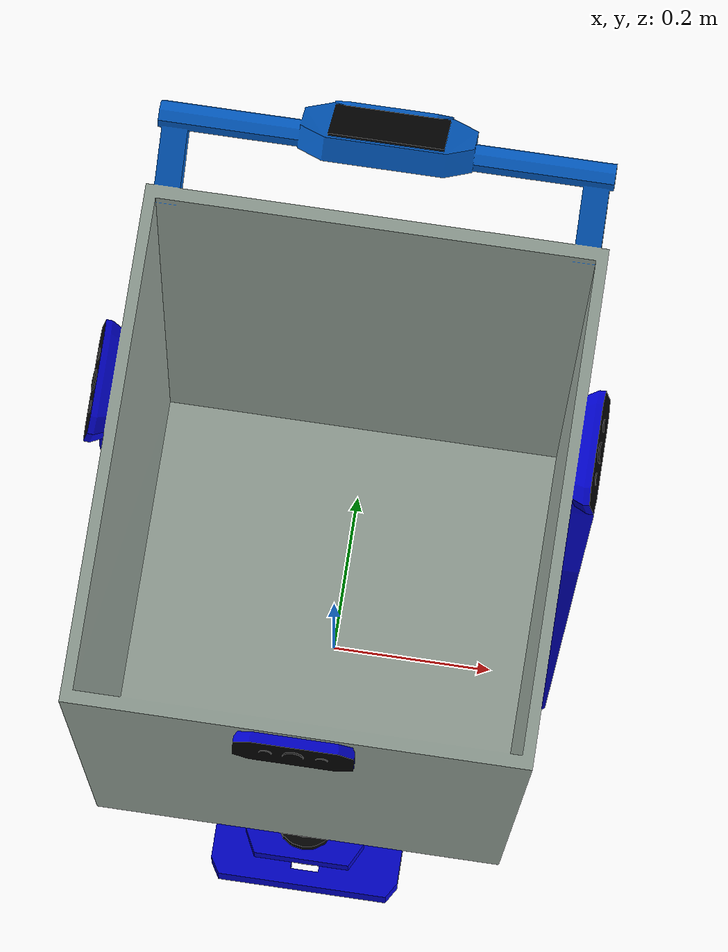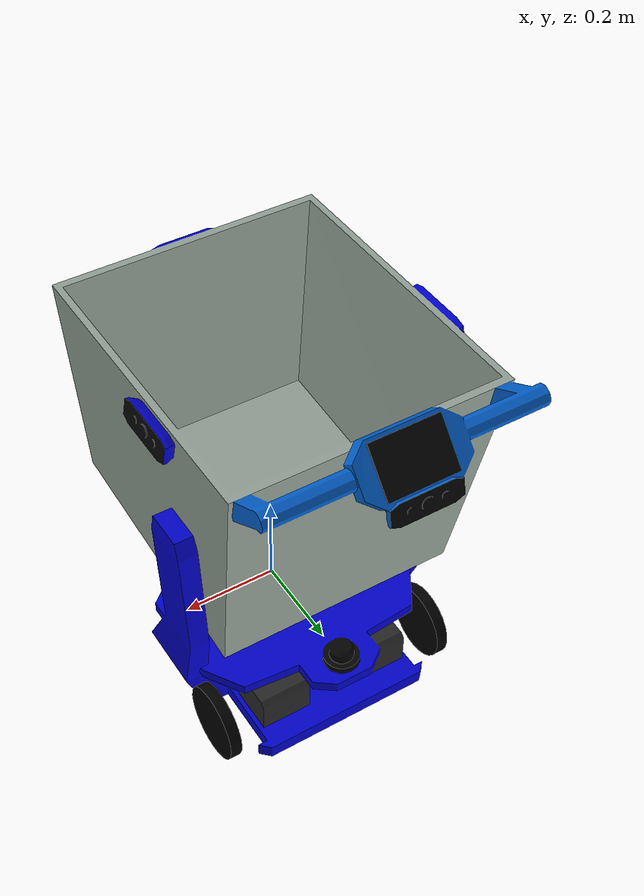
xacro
<?xml version="1.0"?>
<robot name="automatic_cart" xmlns:xacro="http://ros.org/wiki/xacro">

  <!-- Robot Body -->
  <material name="black">
    <color rgba="0 0 0 1"/>
  </material>

  <xacro:property name="baseshift" value="0.2" />
  <xacro:property name="wheellen" value="0.025" />
  <xacro:property name="wheelrad" value="0.08" />
  <xacro:property name="wheellen2" value="0.02" />
  <xacro:property name="wheelrad2" value="0.047" />
  <xacro:property name="xwheel" value="0.25" />
  <xacro:property name="ywheel" value="0.2" />
  <xacro:property name="zwheel" value="-0.11" />
  <xacro:property name="ywheel2" value="-0.2" />
  <xacro:property name="zwheel2" value="-0.15" />
  <xacro:property name="pi" value="3.1415" />

  <xacro:macro name="default_inertial" params="mass">
    <inertial>
      <mass value="${mass}" />
      <inertia ixx="1.0" ixy="0.0" ixz="0.0" iyy="1.0" iyz="0.0" izz="1.0" />
    </inertial>
  </xacro:macro>

  <xacro:macro name="wheel_inertial" params="mass">
    <inertial>
      <mass value="${mass}" />
      <inertia ixx="0.0" ixy="0.0" ixz="0.0" iyy="1.0" iyz="0.0" izz="1.0" />
    </inertial>
  </xacro:macro>

  <link name="base_link">
    <visual>
      <geometry>
        <mesh filename="package://automatic_cart/models/shopping_cart/meshes/shopping_cart_base.dae"/>
      </geometry>
      <origin rpy="0 0 ${pi}" xyz="0.0 0.0 ${baseshift}"/>
    </visual>
    <collision>
      <geometry>
        <mesh filename="package://automatic_cart/models/shopping_cart/meshes/shopping_cart_base.dae"/>
      </geometry>
      <origin rpy="0 0 ${pi}" xyz="0.0 0.0 ${baseshift}"/>
    </collision>
    <xacro:default_inertial mass="30"/>
  </link>

  <link name="basket">
    <visual>
      <geometry>
        <mesh filename="package://automatic_cart/models/shopping_cart/meshes/shopping_cart_basket.dae"/>
      </geometry>
      <origin rpy="0 0 ${pi}" xyz="0.0 0.0 ${-baseshift}"/>
    </visual>
    <collision>
      <geometry>
        <mesh filename="package://automatic_cart/models/shopping_cart/meshes/shopping_cart_basket.dae"/>
      </geometry>
      <origin rpy="0 0 ${pi}" xyz="0.0 0.0 ${-baseshift}"/>
    </collision>
    <xacro:default_inertial mass="10"/>
  </link>

  <joint name="base_to_basket" type="prismatic">
    <axis xyz="0 0 1"/>
    <limit effort="1000.0" lower="-0.07" upper="0.07" velocity="0.5"/>
    <parent link="base_link"/>
    <child link="basket"/>
    <origin xyz="0.0 0.0 ${2*baseshift}"/>
  </joint>

  <transmission name="base_to_basket_trans">
    <type>transmission_interface/SimpleTransmission</type>
    <actuator name="base_to_basket_motor">
      <mechanicalReduction>1</mechanicalReduction>
    </actuator>
    <joint name="base_to_basket">
      <hardwareInterface>PositionJointInterface</hardwareInterface>
    </joint>
  </transmission>

  <!-- Wheels -->
  <xacro:macro name="wheel" params="prefix reflect">
  <link name="${prefix}_wheel">
    <visual>
      <origin rpy="0 ${pi/2} 0" xyz="0 0 0"/>
      <geometry>
	<cylinder length="${wheellen}" radius="${wheelrad}"/>
      </geometry>
      <material name="black"/>
    </visual>
    <collision>
      <origin rpy="0 ${pi/2} 0" xyz="0 0 0"/>
      <geometry>
	<cylinder length="${wheellen}" radius="${wheelrad}"/>
      </geometry>
    </collision>
    <xacro:wheel_inertial mass="2"/>
  </link>
  <joint name="${prefix}_wheel_joint" type="continuous">
    <axis rpy="0 0 0" xyz="1 0 0"/>
    <parent link="base_link"/>
    <child link="${prefix}_wheel"/>
    <origin rpy="0 0 0" xyz="${xwheel*reflect} ${ywheel} ${zwheel}"/>
  </joint>

    <!-- This block provides the simulator (Gazebo) with information on a few additional
    physical properties. See http://gazebosim.org/tutorials/?tut=ros_urdf for more-->
    <gazebo reference="${prefix}_wheel">
      <mu1 value="200.0"/>
      <mu2 value="100.0"/>
      <kp value="10000000.0" />
      <kd value="1.0" />
      <material>Gazebo/Grey</material>
    </gazebo>

    <!-- This block connects the wheel joint to an actuator (motor), which informs both
    simulation and visualization of the robot -->
    <transmission name="${prefix}_wheel_trans">
      <type>transmission_interface/SimpleTransmission</type>
      <actuator name="${prefix}_wheel_motor">
        <mechanicalReduction>1</mechanicalReduction>
      </actuator>
      <joint name="${prefix}_wheel_joint">
        <hardwareInterface>VelocityJointInterface</hardwareInterface>
      </joint>
    </transmission>
  </xacro:macro>
  <xacro:wheel prefix="right" reflect="-1"/>
  <xacro:wheel prefix="left" reflect="1"/>

  <!-- Front Wheel -->
  <link name="front_wheel">
    <visual>
      <origin rpy="0 ${pi/2} 0" xyz="0 0 0"/>
      <geometry>
        <cylinder length="${wheellen2}" radius="${wheelrad2}"/>
      </geometry>
      <material name="black"/>
    </visual>
    <collision>
      <origin rpy="0 ${pi/2} 0" xyz="0 0 0"/>
      <geometry>
        <cylinder length="${wheellen2}" radius="${wheelrad2}"/>
      </geometry>
    </collision>
    <xacro:wheel_inertial mass="1"/>
  </link>
  <joint name="front_wheel_joint" type="continuous">
    <axis rpy="0 0 0" xyz="1 0 0"/>
    <parent link="base_link"/>
    <child link="front_wheel"/>
    <origin rpy="0 0 0" xyz="0 ${ywheel2} ${zwheel2}"/>
  </joint>
  <!-- This block provides the simulator (Gazebo) with information on a few additional
    physical properties. See http://gazebosim.org/tutorials/?tut=ros_urdf for more-->
    <gazebo reference="front_wheel">
      <mu1 value="200.0"/>
      <mu2 value="100.0"/>
      <kp value="10000000.0" />
      <kd value="1.0" />
      <material>Gazebo/Grey</material>
    </gazebo>
    <!-- This block connects the wheel joint to an actuator (motor), which informs both
    simulation and visualization of the robot -->
    <transmission name="front_wheel_trans">
      <type>transmission_interface/SimpleTransmission</type>
      <actuator name="front_wheel_motor">
        <mechanicalReduction>1</mechanicalReduction>
      </actuator>
      <joint name="front_wheel_joint">
        <hardwareInterface>VelocityJointInterface</hardwareInterface>
      </joint>
    </transmission>

  <!-- Gazebo plugin for ROS Control -->
  <gazebo>
    <plugin name="gazebo_ros_control" filename="libgazebo_ros_control.so">
      <robotNamespace>/</robotNamespace>
    </plugin>
  </gazebo>

</robot>
